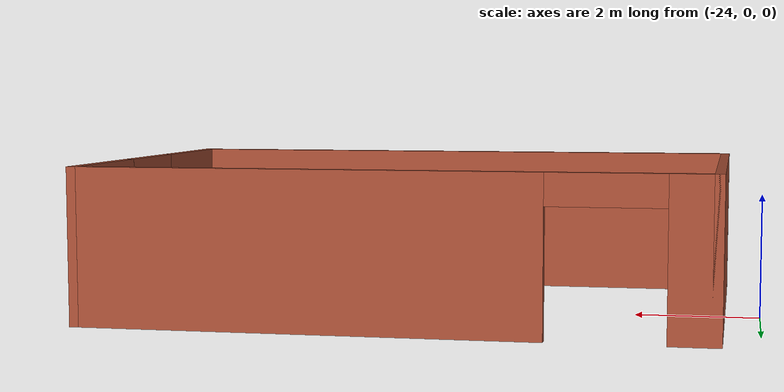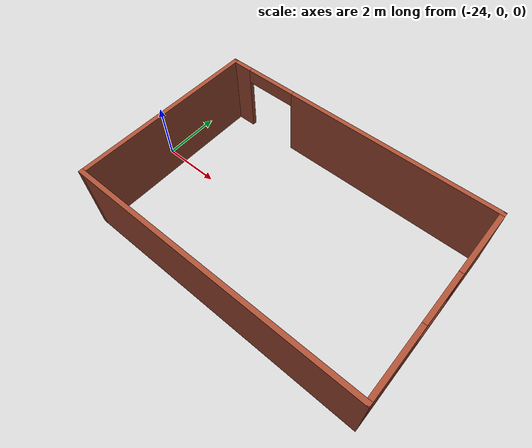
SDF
<?xml version='1.0'?>
<sdf version='1.6'>
  <model name='food_handling_shed'>
    <pose frame=''>-18.444 -0.210157 0 0 -0 0</pose>
    <link name='Wall_11'>
      <pose frame=''>-0 3.175 0 0 -0 0</pose>
      <visual name='Wall_11_Visual_0'>
        <pose frame=''>-4.60375 0 1.25 0 -0 0</pose>
        <geometry>
          <box>
            <size>0.792497 0.15 2.5</size>
          </box>
        </geometry>
        <material>
          <script>
            <uri>file://media/materials/scripts/gazebo.material</uri>
            <name>Gazebo/Bricks</name>
          </script>
          <ambient>1 1 1 1</ambient>
        </material>
        <meta>
          <layer>0</layer>
        </meta>
      </visual>
      <collision name='Wall_11_Collision_0'>
        <geometry>
          <box>
            <size>0.792497 0.15 2.5</size>
          </box>
        </geometry>
        <pose frame=''>-4.60375 0 1.25 0 -0 0</pose>
      </collision>
      <visual name='Wall_11_Visual_1'>
        <pose frame=''>1.29625 0 1.25 0 -0 0</pose>
        <geometry>
          <box>
            <size>7.4075 0.15 2.5</size>
          </box>
        </geometry>
        <material>
          <script>
            <uri>file://media/materials/scripts/gazebo.material</uri>
            <name>Gazebo/Bricks</name>
          </script>
          <ambient>1 1 1 1</ambient>
        </material>
        <meta>
          <layer>0</layer>
        </meta>
      </visual>
      <collision name='Wall_11_Collision_1'>
        <geometry>
          <box>
            <size>7.4075 0.15 2.5</size>
          </box>
        </geometry>
        <pose frame=''>1.29625 0 1.25 0 -0 0</pose>
      </collision>
      <visual name='Wall_11_Visual_2'>
        <pose frame=''>-3.3075 0 2.25 0 -0 0</pose>
        <geometry>
          <box>
            <size>1.8 0.15 0.5</size>
          </box>
        </geometry>
        <material>
          <script>
            <uri>file://media/materials/scripts/gazebo.material</uri>
            <name>Gazebo/Bricks</name>
          </script>
          <ambient>1 1 1 1</ambient>
        </material>
        <meta>
          <layer>0</layer>
        </meta>
      </visual>
      <collision name='Wall_11_Collision_2'>
        <geometry>
          <box>
            <size>1.8 0.15 0.5</size>
          </box>
        </geometry>
        <pose frame=''>-3.3075 0 2.25 0 -0 0</pose>
      </collision>
    </link>
    <link name='Wall_12'>
      <pose frame=''>4.925 -0 0 0 -0 -1.5708</pose>
      <visual name='Wall_12_Visual_0'>
        <pose frame=''>-2.06069 0 1.25 0 -0 0</pose>
        <geometry>
          <box>
            <size>2.37863 0.15 2.5</size>
          </box>
        </geometry>
        <material>
          <script>
            <uri>file://media/materials/scripts/gazebo.material</uri>
            <name>Gazebo/Bricks</name>
          </script>
          <ambient>1 1 1 1</ambient>
        </material>
        <meta>
          <layer>0</layer>
        </meta>
      </visual>
      <collision name='Wall_12_Collision_0'>
        <geometry>
          <box>
            <size>2.37863 0.15 2.5</size>
          </box>
        </geometry>
        <pose frame=''>-2.06069 0 1.25 0 -0 0</pose>
      </collision>
      <visual name='Wall_12_Visual_1'>
        <pose frame=''>1.18931 0 0.45 0 -0 0</pose>
        <geometry>
          <box>
            <size>4.12137 0.15 0.9</size>
          </box>
        </geometry>
        <material>
          <script>
            <uri>file://media/materials/scripts/gazebo.material</uri>
            <name>Gazebo/Bricks</name>
          </script>
          <ambient>1 1 1 1</ambient>
        </material>
        <meta>
          <layer>0</layer>
        </meta>
      </visual>
      <collision name='Wall_12_Collision_1'>
        <geometry>
          <box>
            <size>4.12137 0.15 0.9</size>
          </box>
        </geometry>
        <pose frame=''>1.18931 0 0.45 0 -0 0</pose>
      </collision>
      <visual name='Wall_12_Visual_2'>
        <pose frame=''>2.06431 0 1.7 0 -0 0</pose>
        <geometry>
          <box>
            <size>2.37137 0.15 1.6</size>
          </box>
        </geometry>
        <material>
          <script>
            <uri>file://media/materials/scripts/gazebo.material</uri>
            <name>Gazebo/Bricks</name>
          </script>
          <ambient>1 1 1 1</ambient>
        </material>
        <meta>
          <layer>0</layer>
        </meta>
      </visual>
      <collision name='Wall_12_Collision_2'>
        <geometry>
          <box>
            <size>2.37137 0.15 1.6</size>
          </box>
        </geometry>
        <pose frame=''>2.06431 0 1.7 0 -0 0</pose>
      </collision>
      <visual name='Wall_12_Visual_3'>
        <pose frame=''>0.003629 0 2.2 0 -0 0</pose>
        <geometry>
          <box>
            <size>1.75 0.15 0.6</size>
          </box>
        </geometry>
        <material>
          <script>
            <uri>file://media/materials/scripts/gazebo.material</uri>
            <name>Gazebo/Bricks</name>
          </script>
          <ambient>1 1 1 1</ambient>
        </material>
        <meta>
          <layer>0</layer>
        </meta>
      </visual>
      <collision name='Wall_12_Collision_3'>
        <geometry>
          <box>
            <size>1.75 0.15 0.6</size>
          </box>
        </geometry>
        <pose frame=''>0.003629 0 2.2 0 -0 0</pose>
      </collision>
    </link>
    <link name='Wall_13'>
      <collision name='Wall_13_Collision'>
        <geometry>
          <box>
            <size>10 0.15 2.5</size>
          </box>
        </geometry>
        <pose frame=''>0 0 1.25 0 -0 0</pose>
      </collision>
      <visual name='Wall_13_Visual'>
        <pose frame=''>0 0 1.25 0 -0 0</pose>
        <geometry>
          <box>
            <size>10 0.15 2.5</size>
          </box>
        </geometry>
        <material>
          <script>
            <uri>file://media/materials/scripts/gazebo.material</uri>
            <name>Gazebo/Bricks</name>
          </script>
          <ambient>1 1 1 1</ambient>
        </material>
        <meta>
          <layer>0</layer>
        </meta>
      </visual>
      <pose frame=''>-0 -3.175 0 0 -0 3.14159</pose>
    </link>
    <link name='Wall_14'>
      <collision name='Wall_14_Collision'>
        <geometry>
          <box>
            <size>6.5 0.15 2.5</size>
          </box>
        </geometry>
        <pose frame=''>0 0 1.25 0 -0 0</pose>
      </collision>
      <visual name='Wall_14_Visual'>
        <pose frame=''>0 0 1.25 0 -0 0</pose>
        <geometry>
          <box>
            <size>6.5 0.15 2.5</size>
          </box>
        </geometry>
        <material>
          <script>
            <uri>file://media/materials/scripts/gazebo.material</uri>
            <name>Gazebo/Bricks</name>
          </script>
          <ambient>1 1 1 1</ambient>
        </material>
        <meta>
          <layer>0</layer>
        </meta>
      </visual>
      <pose frame=''>-4.925 -0 0 0 -0 1.5708</pose>
    </link>
    <static>1</static>
  </model>
</sdf>
